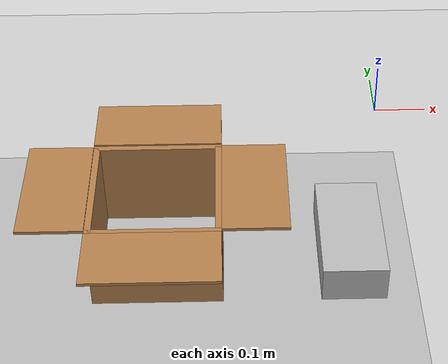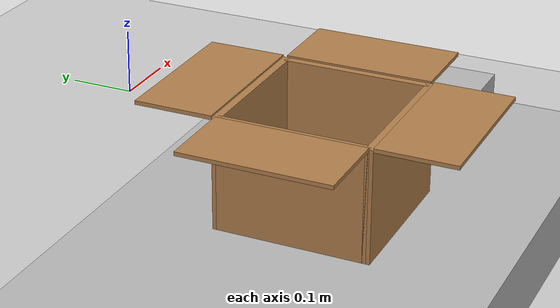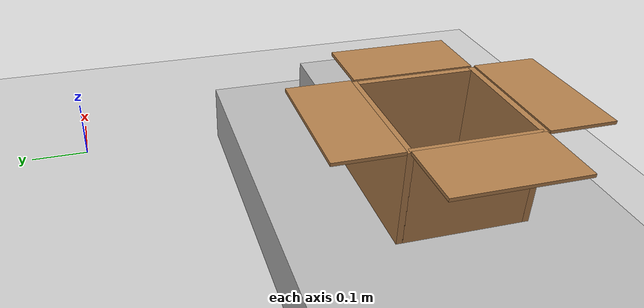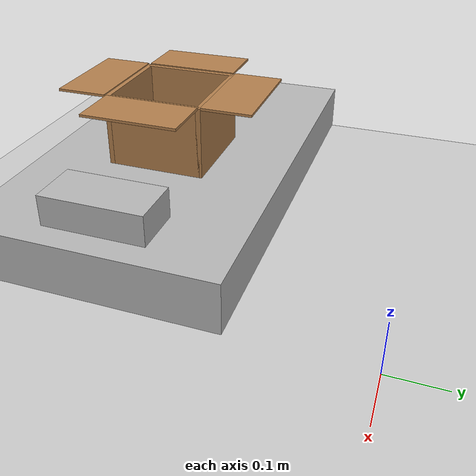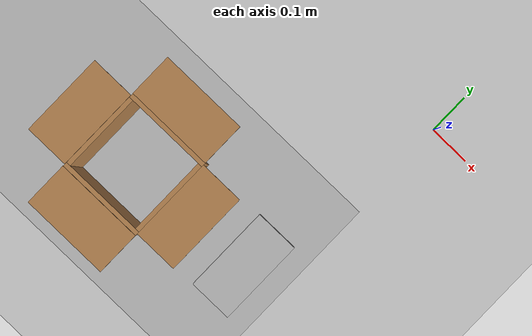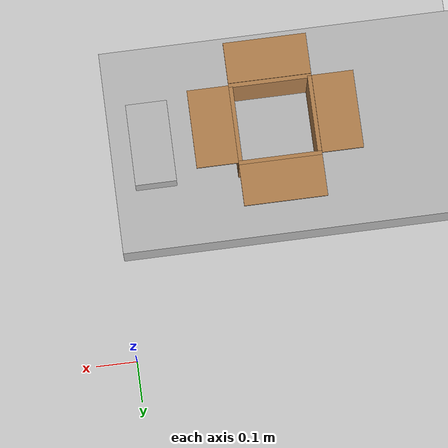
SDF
<?xml version="1.0"?>
<sdf version="1.6">
<world name="basic_world">

<include>
  <uri>model://ground_plane</uri>
</include>

<include>
  <uri>model://sun</uri>
</include>
<model name="conveyor">
    <static>true</static>
    <pose>-5 -0.5 0.05 0 0 0</pose>
    <link name="belt">
      <collision name="collision">
        <geometry>
          <box><size>10 0.5 0.1</size></box>
        </geometry>
        <surface>
          <contact>
            <collide_bitmask>0x01</collide_bitmask>
          </contact>
        </surface>
      </collision>
      <visual name="visual">
        <geometry>
          <box><size>10 0.5 0.1</size></box>
        </geometry>
      </visual>
    </link>
    <plugin name="conveyor_belt_plugin" filename="libconveyer_plugin.so">
      <belt_velocity>0.05</belt_velocity>
      <belt_direction>-1 0 0</belt_direction>
    </plugin>
  </model>

<model name="cardboard_box">
  <pose>-0.4 -0.5 0.15 0 0 0</pose>
    <link name="bottom">
    <pose>0 0 -0.095 0 0 0</pose>
  <collision name="collision">
    <geometry>
      <box><size>0.2 0.2 0.01</size></box>
    </geometry>
    <surface>
      <friction>
        <ode>
          <mu>1.0</mu>
          <mu2>1.0</mu2>
        </ode>
      </friction>
      <bounce>
        <restitution_coefficient>0.1</restitution_coefficient>
        <threshold>0.01</threshold>
      </bounce>
      <contact>
        <ode>
          <kp>100000</kp>  <!-- Stiffness -->
          <kd>1</kd>        <!-- Damping -->
        </ode>
      </contact>
    </surface>
  </collision>
    <visual name="visual">
      <geometry>
        <box>
          <size>0.2 0.2 0.01</size>
        </box>
      </geometry>
      <material>
        <ambient>0.7 0.5 0.3 1</ambient>
        <diffuse>0.7 0.5 0.3 1</diffuse>
      </material>
    </visual>
    <inertial>
      <mass>0.15</mass>
      <inertia>
        <ixx>0.00050</ixx>
        <iyy>0.00050</iyy>
        <izz>0.00100</izz>
      </inertia>
    </inertial>

  </link>
  
    <link name="front_wall">
    <pose>0 0.095 0 0 0 0</pose>
    <collision name="collision">
      <geometry>
        <box>
          <size>0.2 0.01 0.19</size>
        </box>
      </geometry>
    </collision>
    <visual name="visual">
      <geometry>
        <box>
          <size>0.2 0.01 0.19</size>
        </box>
      </geometry>
      <material>
        <ambient>0.7 0.5 0.3 1</ambient>
        <diffuse>0.7 0.5 0.3 1</diffuse>
      </material>
    </visual>
    <inertial>
      <mass>0.08</mass>
      <inertia>
        <ixx>0.00024</ixx>
        <iyy>0.00027</iyy>
        <izz>0.00003</izz>
      </inertia>
    </inertial>
  </link>
  
    <link name="back_wall">
    <pose>0 -0.095 0 0 0 0</pose>
    <collision name="collision">
      <geometry>
        <box>
          <size>0.2 0.01 0.19</size>
        </box>
      </geometry>
    </collision>
    <visual name="visual">
      <geometry>
        <box>
          <size>0.2 0.01 0.19</size>
        </box>
      </geometry>
      <material>
        <ambient>0.7 0.5 0.3 1</ambient>
        <diffuse>0.7 0.5 0.3 1</diffuse>
      </material>
    </visual>
    <inertial>
      <mass>0.08</mass>
      <inertia>
        <ixx>0.00024</ixx>
        <iyy>0.00027</iyy>
        <izz>0.00003</izz>
      </inertia>
    </inertial>
  </link>
  
    <link name="left_wall">
    <pose>-0.095 0 0 0 0 0</pose>
    <collision name="collision">
      <geometry>
        <box>
          <size>0.01 0.19 0.19</size>
        </box>
      </geometry>
    </collision>
    <visual name="visual">
      <geometry>
        <box>
          <size>0.01 0.19 0.19</size>
        </box>
      </geometry>
      <material>
        <ambient>0.7 0.5 0.3 1</ambient>
        <diffuse>0.7 0.5 0.3 1</diffuse>
      </material>
    </visual>
    <inertial>
      <mass>0.08</mass>
      <inertia>
        <ixx>0.00024</ixx>
        <iyy>0.00003</iyy>
        <izz>0.00024</izz>
      </inertia>
    </inertial>
  </link>
  
    <link name="right_wall">
    <pose>0.095 0 0 0 0 0</pose>
    <collision name="collision">
      <geometry>
        <box>
          <size>0.01 0.19 0.19</size>
        </box>
      </geometry>
    </collision>
    <visual name="visual">
      <geometry>
        <box>
          <size>0.01 0.19 0.19</size>
        </box>
      </geometry>
      <material>
        <ambient>0.7 0.5 0.3 1</ambient>
        <diffuse>0.7 0.5 0.3 1</diffuse>
      </material>
    </visual>
    <inertial>
      <mass>0.08</mass>
      <inertia>
        <ixx>0.00024</ixx>
        <iyy>0.00003</iyy>
        <izz>0.00024</izz>
      </inertia>
    </inertial>
  </link>
  
    <joint name="front_wall_joint" type="fixed">
    <parent>bottom</parent>
    <child>front_wall</child>
  </joint>
  
    <link name="flap_2">
    <pose>0.0 -0.15 0.095 0 0 0</pose>     <collision name="collision">
      <geometry>
        <box>
          <size>0.2 0.1 0.005</size>
        </box>
      </geometry>
    </collision>
    <visual name="visual">
      <geometry>
        <box>
          <size>0.2 0.1 0.005</size>
        </box>
      </geometry>
      <material>
        <ambient>0.7 0.5 0.3 1</ambient>
        <diffuse>0.7 0.5 0.3 1</diffuse>
      </material>
    </visual>
    <inertial>
      <mass>0.04</mass>
      <inertia>
        <ixx>0.000003</ixx>
        <iyy>0.000007</iyy>
        <izz>0.000007</izz>
      </inertia>
    </inertial>
  </link>
  
  <joint name="flap_2_joint" type="revolute">
    <parent>back_wall</parent>
    <child>flap_2</child>
    <pose>0.0 0.05 0 0 0 0</pose>     <axis>
      <xyz>1 0 0</xyz>       <limit>
        <lower>-3.1416</lower>
        <upper>1.5</upper>
      </limit>
      <dynamics>
        <damping>0.0025</damping>         <friction>0.0025</friction>
      </dynamics>
    </axis>
  </joint>
  
  <joint name="back_wall_joint" type="fixed">
    <parent>bottom</parent>
    <child>back_wall</child>
  </joint>
  
  <joint name="left_wall_joint" type="fixed">
    <parent>bottom</parent>
    <child>left_wall</child>
  </joint>
  
  <joint name="right_wall_joint" type="fixed">
    <parent>bottom</parent>
    <child>right_wall</child>
  </joint>
  
    <link name="flap_1">
    <pose>0.0 0.15 0.095 0 0 0</pose>     <collision name="collision">
      <geometry>
        <box>
          <size>0.2 0.1 0.005</size>
        </box>
      </geometry>
    </collision>
    <visual name="visual">
      <geometry>
        <box>
          <size>0.2 0.1 0.005</size>
        </box>
      </geometry>
      <material>
        <ambient>0.7 0.5 0.3 1</ambient>
        <diffuse>0.7 0.5 0.3 1</diffuse>
      </material>
    </visual>
    <inertial>
      <mass>0.04</mass>
      <inertia>
        <ixx>0.000003</ixx>
        <iyy>0.000007</iyy>
        <izz>0.000007</izz>
      </inertia>
    </inertial>
  </link>
  
  <joint name="flap_1_joint" type="revolute">
    <parent>front_wall</parent>
    <child>flap_1</child>
    <pose>0.0 -0.05 0 0.5 0 0</pose>     <axis>
      <xyz>1 0 0</xyz>       <limit>
        <lower>-1.5</lower>         <upper>3.1416</upper>            </limit>
      <dynamics>
        <damping>0.002</damping>
        <friction>0.002</friction>
      </dynamics>
    </axis>
  </joint>

  <link name="flap_3">
    <pose>-0.15 0 0.095 0 0 0</pose>
    <collision name="collision">
      <geometry>
        <box>
          <size>0.1 0.19 0.005</size>
        </box>
      </geometry>
    </collision>
    <visual name="visual">
      <geometry>
        <box>
          <size>0.1 0.19 0.005</size>
        </box>
      </geometry>
      <material>
        <ambient>0.7 0.5 0.3 1</ambient>
        <diffuse>0.7 0.5 0.3 1</diffuse>
      </material>
    </visual>
    <inertial>
      <mass>0.04</mass>
      <inertia>
        <ixx>0.000005</ixx>
        <iyy>0.000003</iyy>
        <izz>0.000006</izz>
      </inertia>
    </inertial>
  </link>

  <joint name="flap_3_joint" type="revolute">
    <parent>left_wall</parent>
    <child>flap_3</child>
    <pose>0.05 0 0 0 0 0</pose>
    <axis>
      <xyz>0 1 0</xyz>
      <limit>
        <lower>0.5</lower>
        <upper>3.1416</upper>
      </limit>
      <dynamics>
        <damping>0.0005</damping>
        <friction>0.0005</friction>
      </dynamics>
    </axis>
    <initial_position>0.6</initial_position>
  </joint>

  <link name="flap_4">
    <pose>0.15 0 0.095 0 0 0</pose>
    <collision name="collision">
      <geometry>
        <box>
          <size>0.1 0.19 0.005</size>
        </box>
      </geometry>
    </collision>
    <visual name="visual">
      <geometry>
        <box>
          <size>0.1 0.19 0.005</size>
        </box>
      </geometry>
      <material>
        <ambient>0.7 0.5 0.3 1</ambient>
        <diffuse>0.7 0.5 0.3 1</diffuse>
      </material>
    </visual>
    <inertial>
      <mass>0.01</mass>
      <inertia>
        <ixx>0.00001</ixx>
        <iyy>0.00001</iyy>
        <izz>0.00001</izz>
      </inertia>
    </inertial>
  </link>

  <joint name="flap_4_joint" type="revolute">
    <parent>right_wall</parent>
    <child>flap_4</child>
    <pose>-0.05 0 0 0 0 0</pose>
    <axis>
      <xyz>0 1 0</xyz>
      <limit>
        <lower>-3.1416</lower>
        <upper>-0.5</upper>
      </limit>
      <dynamics>
        <damping>0.0005</damping>
        <friction>0.0005</friction>
      </dynamics>
    </axis>
    <initial_position>-0.6</initial_position>
  </joint>
</model>

<model name="microwave">
  <pose>-0.1 -0.5 0.11 0 0 0</pose>

  <link name="microwave_link">

    <collision name="collision">
      <geometry>
        <box>
          <size>0.1 0.2 0.1</size>
        </box>
      </geometry>
    </collision>

    <visual name="visual">
      <geometry>
        <box>
          <size>0.1 0.2 0.1</size>
        </box>
      </geometry>
    </visual>

    <inertial>
      <mass>100.0</mass>
      <inertia>
        <ixx>0.00833</ixx>
        <iyy>100</iyy>
        <izz>100</izz>
      </inertia>
    </inertial>

  </link>
</model>

	<plugin name="gazebo_link_attacher" filename="libgazebo_link_attacher.so"><model_name>gantry</model_name><attach_service_name>ATTACHLINK</attach_service_name><detach_service_name>DETACHLINK</detach_service_name></plugin>

  <plugin name="gazebo_ros_state" filename="libgazebo_ros_state.so">
    <ros>
      <namespace>/gazebo</namespace>
    </ros>

    <update_rate>1.0</update_rate>
  </plugin>

</world>
</sdf>
